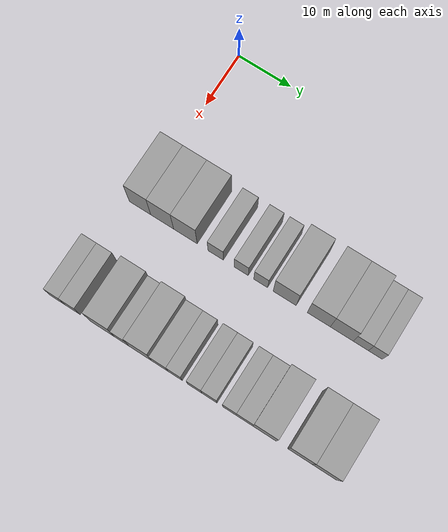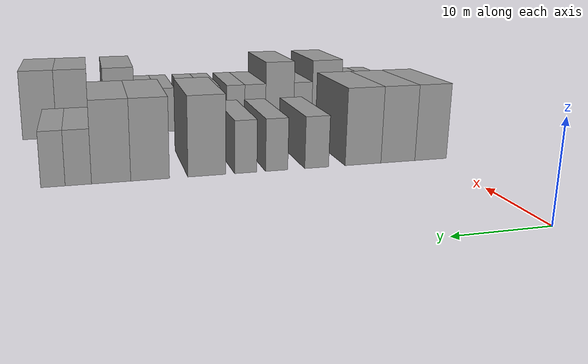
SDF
<sdf version="1.6">
 <world name="default">
  <model name="building_52">
   <static>1</static>
   <pose>25.0000 0.6370 0 0.000000 0.000000 0.000000</pose>
   <link name="link">
    <pose>0 0 4.50 0 0 0</pose>
    <collision name="collision"><geometry><box><size>10.0000 4.0496 9.0000</size></box></geometry></collision>
    <visual name="visual">
     <cast_shadows>0</cast_shadows>
     <geometry><box><size>10.0000 4.0496 9.0000</size></box></geometry>
     <material>
      <script>
       <uri>model://grey_wall/materials/scripts</uri>
       <uri>model://grey_wall/materials/textures</uri>
       <name>vrc/grey_wall</name>
      </script>
     </material>
    </visual>
   </link>
  </model>
  <model name="building_53">
   <static>1</static>
   <pose>25.0000 4.7994 0 0.000000 0.000000 0.000000</pose>
   <link name="link">
    <pose>0 0 4.50 0 0 0</pose>
    <collision name="collision"><geometry><box><size>10.0000 4.2754 9.0000</size></box></geometry></collision>
    <visual name="visual">
     <cast_shadows>0</cast_shadows>
     <geometry><box><size>10.0000 4.2754 9.0000</size></box></geometry>
     <material>
      <script>
       <uri>model://grey_wall/materials/scripts</uri>
       <uri>model://grey_wall/materials/textures</uri>
       <name>vrc/grey_wall</name>
      </script>
     </material>
    </visual>
   </link>
  </model>
  <model name="building_54">
   <static>1</static>
   <pose>25.0000 9.1349 0 0.000000 0.000000 0.000000</pose>
   <link name="link">
    <pose>0 0 4.50 0 0 0</pose>
    <collision name="collision"><geometry><box><size>10.0000 4.3956 9.0000</size></box></geometry></collision>
    <visual name="visual">
     <cast_shadows>0</cast_shadows>
     <geometry><box><size>10.0000 4.3956 9.0000</size></box></geometry>
     <material>
      <script>
       <uri>model://grey_wall/materials/scripts</uri>
       <uri>model://grey_wall/materials/textures</uri>
       <name>vrc/grey_wall</name>
      </script>
     </material>
    </visual>
   </link>
  </model>
  <model name="building_55">
   <static>1</static>
   <pose>25.0000 14.7511 0 0.000000 0.000000 0.000000</pose>
   <link name="link">
    <pose>0 0 3.00 0 0 0</pose>
    <collision name="collision"><geometry><box><size>10.0000 2.8367 6.0000</size></box></geometry></collision>
    <visual name="visual">
     <cast_shadows>0</cast_shadows>
     <geometry><box><size>10.0000 2.8367 6.0000</size></box></geometry>
     <material>
      <script>
       <uri>model://grey_wall/materials/scripts</uri>
       <uri>model://grey_wall/materials/textures</uri>
       <name>vrc/grey_wall</name>
      </script>
     </material>
    </visual>
   </link>
  </model>
  <model name="building_56">
   <static>1</static>
   <pose>25.0000 19.4567 0 0.000000 0.000000 0.000000</pose>
   <link name="link">
    <pose>0 0 3.00 0 0 0</pose>
    <collision name="collision"><geometry><box><size>10.0000 2.5744 6.0000</size></box></geometry></collision>
    <visual name="visual">
     <cast_shadows>0</cast_shadows>
     <geometry><box><size>10.0000 2.5744 6.0000</size></box></geometry>
     <material>
      <script>
       <uri>model://grey_wall/materials/scripts</uri>
       <uri>model://grey_wall/materials/textures</uri>
       <name>vrc/grey_wall</name>
      </script>
     </material>
    </visual>
   </link>
  </model>
  <model name="building_57">
   <static>1</static>
   <pose>25.0000 23.0053 0 0.000000 0.000000 0.000000</pose>
   <link name="link">
    <pose>0 0 3.00 0 0 0</pose>
    <collision name="collision"><geometry><box><size>10.0000 2.5229 6.0000</size></box></geometry></collision>
    <visual name="visual">
     <cast_shadows>0</cast_shadows>
     <geometry><box><size>10.0000 2.5229 6.0000</size></box></geometry>
     <material>
      <script>
       <uri>model://grey_wall/materials/scripts</uri>
       <uri>model://grey_wall/materials/textures</uri>
       <name>vrc/grey_wall</name>
      </script>
     </material>
    </visual>
   </link>
  </model>
  <model name="building_58">
   <static>1</static>
   <pose>25.0000 27.3619 0 0.000000 0.000000 0.000000</pose>
   <link name="link">
    <pose>0 0 4.50 0 0 0</pose>
    <collision name="collision"><geometry><box><size>10.0000 4.1903 9.0000</size></box></geometry></collision>
    <visual name="visual">
     <cast_shadows>0</cast_shadows>
     <geometry><box><size>10.0000 4.1903 9.0000</size></box></geometry>
     <material>
      <script>
       <uri>model://grey_wall/materials/scripts</uri>
       <uri>model://grey_wall/materials/textures</uri>
       <name>vrc/grey_wall</name>
      </script>
     </material>
    </visual>
   </link>
  </model>
  <model name="building_59">
   <static>1</static>
   <pose>25.0000 33.5220 0 0.000000 0.000000 0.000000</pose>
   <link name="link">
    <pose>0 0 4.50 0 0 0</pose>
    <collision name="collision"><geometry><box><size>10.0000 4.1299 9.0000</size></box></geometry></collision>
    <visual name="visual">
     <cast_shadows>0</cast_shadows>
     <geometry><box><size>10.0000 4.1299 9.0000</size></box></geometry>
     <material>
      <script>
       <uri>model://grey_wall/materials/scripts</uri>
       <uri>model://grey_wall/materials/textures</uri>
       <name>vrc/grey_wall</name>
      </script>
     </material>
    </visual>
   </link>
  </model>
  <model name="building_60">
   <static>1</static>
   <pose>25.0000 37.6324 0 0.000000 0.000000 0.000000</pose>
   <link name="link">
    <pose>0 0 4.50 0 0 0</pose>
    <collision name="collision"><geometry><box><size>10.0000 4.0908 9.0000</size></box></geometry></collision>
    <visual name="visual">
     <cast_shadows>0</cast_shadows>
     <geometry><box><size>10.0000 4.0908 9.0000</size></box></geometry>
     <material>
      <script>
       <uri>model://grey_wall/materials/scripts</uri>
       <uri>model://grey_wall/materials/textures</uri>
       <name>vrc/grey_wall</name>
      </script>
     </material>
    </visual>
   </link>
  </model>
  <model name="building_61">
   <static>1</static>
   <pose>25.0000 41.0236 0 0.000000 0.000000 0.000000</pose>
   <link name="link">
    <pose>0 0 3.00 0 0 0</pose>
    <collision name="collision"><geometry><box><size>10.0000 2.6917 6.0000</size></box></geometry></collision>
    <visual name="visual">
     <cast_shadows>0</cast_shadows>
     <geometry><box><size>10.0000 2.6917 6.0000</size></box></geometry>
     <material>
      <script>
       <uri>model://grey_wall/materials/scripts</uri>
       <uri>model://grey_wall/materials/textures</uri>
       <name>vrc/grey_wall</name>
      </script>
     </material>
    </visual>
   </link>
  </model>
  <model name="building_62">
   <static>1</static>
   <pose>25.0000 43.5973 0 0.000000 0.000000 0.000000</pose>
   <link name="link">
    <pose>0 0 3.00 0 0 0</pose>
    <collision name="collision"><geometry><box><size>10.0000 2.4557 6.0000</size></box></geometry></collision>
    <visual name="visual">
     <cast_shadows>0</cast_shadows>
     <geometry><box><size>10.0000 2.4557 6.0000</size></box></geometry>
     <material>
      <script>
       <uri>model://grey_wall/materials/scripts</uri>
       <uri>model://grey_wall/materials/textures</uri>
       <name>vrc/grey_wall</name>
      </script>
     </material>
    </visual>
   </link>
  </model>
  <model name="building_155">
   <static>1</static>
   <pose>44.0000 -1.9106 0 0.000000 0.000000 0.000000</pose>
   <link name="link">
    <pose>0 0 3.00 0 0 0</pose>
    <collision name="collision"><geometry><box><size>10.0000 2.7138 6.0000</size></box></geometry></collision>
    <visual name="visual">
     <cast_shadows>0</cast_shadows>
     <geometry><box><size>10.0000 2.7138 6.0000</size></box></geometry>
     <material>
      <script>
       <uri>model://grey_wall/materials/scripts</uri>
       <uri>model://grey_wall/materials/textures</uri>
       <name>vrc/grey_wall</name>
      </script>
     </material>
    </visual>
   </link>
  </model>
  <model name="building_156">
   <static>1</static>
   <pose>44.0000 0.8481 0 0.000000 0.000000 0.000000</pose>
   <link name="link">
    <pose>0 0 3.00 0 0 0</pose>
    <collision name="collision"><geometry><box><size>10.0000 2.8035 6.0000</size></box></geometry></collision>
    <visual name="visual">
     <cast_shadows>0</cast_shadows>
     <geometry><box><size>10.0000 2.8035 6.0000</size></box></geometry>
     <material>
      <script>
       <uri>model://grey_wall/materials/scripts</uri>
       <uri>model://grey_wall/materials/textures</uri>
       <name>vrc/grey_wall</name>
      </script>
     </material>
    </visual>
   </link>
  </model>
  <model name="building_157">
   <static>1</static>
   <pose>44.0000 6.4411 0 0.000000 0.000000 0.000000</pose>
   <link name="link">
    <pose>0 0 4.50 0 0 0</pose>
    <collision name="collision"><geometry><box><size>10.0000 4.3825 9.0000</size></box></geometry></collision>
    <visual name="visual">
     <cast_shadows>0</cast_shadows>
     <geometry><box><size>10.0000 4.3825 9.0000</size></box></geometry>
     <material>
      <script>
       <uri>model://grey_wall/materials/scripts</uri>
       <uri>model://grey_wall/materials/textures</uri>
       <name>vrc/grey_wall</name>
      </script>
     </material>
    </visual>
   </link>
  </model>
  <model name="building_158">
   <static>1</static>
   <pose>44.0000 9.9770 0 0.000000 0.000000 0.000000</pose>
   <link name="link">
    <pose>0 0 3.00 0 0 0</pose>
    <collision name="collision"><geometry><box><size>10.0000 2.6894 6.0000</size></box></geometry></collision>
    <visual name="visual">
     <cast_shadows>0</cast_shadows>
     <geometry><box><size>10.0000 2.6894 6.0000</size></box></geometry>
     <material>
      <script>
       <uri>model://grey_wall/materials/scripts</uri>
       <uri>model://grey_wall/materials/textures</uri>
       <name>vrc/grey_wall</name>
      </script>
     </material>
    </visual>
   </link>
  </model>
  <model name="building_159">
   <static>1</static>
   <pose>44.0000 13.3762 0 0.000000 0.000000 0.000000</pose>
   <link name="link">
    <pose>0 0 4.50 0 0 0</pose>
    <collision name="collision"><geometry><box><size>10.0000 4.1091 9.0000</size></box></geometry></collision>
    <visual name="visual">
     <cast_shadows>0</cast_shadows>
     <geometry><box><size>10.0000 4.1091 9.0000</size></box></geometry>
     <material>
      <script>
       <uri>model://grey_wall/materials/scripts</uri>
       <uri>model://grey_wall/materials/textures</uri>
       <name>vrc/grey_wall</name>
      </script>
     </material>
    </visual>
   </link>
  </model>
  <model name="building_160">
   <static>1</static>
   <pose>44.0000 16.9262 0 0.000000 0.000000 0.000000</pose>
   <link name="link">
    <pose>0 0 3.00 0 0 0</pose>
    <collision name="collision"><geometry><box><size>10.0000 2.9908 6.0000</size></box></geometry></collision>
    <visual name="visual">
     <cast_shadows>0</cast_shadows>
     <geometry><box><size>10.0000 2.9908 6.0000</size></box></geometry>
     <material>
      <script>
       <uri>model://grey_wall/materials/scripts</uri>
       <uri>model://grey_wall/materials/textures</uri>
       <name>vrc/grey_wall</name>
      </script>
     </material>
    </visual>
   </link>
  </model>
  <model name="building_161">
   <static>1</static>
   <pose>44.0000 19.6893 0 0.000000 0.000000 0.000000</pose>
   <link name="link">
    <pose>0 0 3.00 0 0 0</pose>
    <collision name="collision"><geometry><box><size>10.0000 2.5356 6.0000</size></box></geometry></collision>
    <visual name="visual">
     <cast_shadows>0</cast_shadows>
     <geometry><box><size>10.0000 2.5356 6.0000</size></box></geometry>
     <material>
      <script>
       <uri>model://grey_wall/materials/scripts</uri>
       <uri>model://grey_wall/materials/textures</uri>
       <name>vrc/grey_wall</name>
      </script>
     </material>
    </visual>
   </link>
  </model>
  <model name="building_162">
   <static>1</static>
   <pose>44.0000 23.2191 0 0.000000 0.000000 0.000000</pose>
   <link name="link">
    <pose>0 0 3.00 0 0 0</pose>
    <collision name="collision"><geometry><box><size>10.0000 2.5240 6.0000</size></box></geometry></collision>
    <visual name="visual">
     <cast_shadows>0</cast_shadows>
     <geometry><box><size>10.0000 2.5240 6.0000</size></box></geometry>
     <material>
      <script>
       <uri>model://grey_wall/materials/scripts</uri>
       <uri>model://grey_wall/materials/textures</uri>
       <name>vrc/grey_wall</name>
      </script>
     </material>
    </visual>
   </link>
  </model>
  <model name="building_163">
   <static>1</static>
   <pose>44.0000 25.8400 0 0.000000 0.000000 0.000000</pose>
   <link name="link">
    <pose>0 0 3.00 0 0 0</pose>
    <collision name="collision"><geometry><box><size>10.0000 2.7177 6.0000</size></box></geometry></collision>
    <visual name="visual">
     <cast_shadows>0</cast_shadows>
     <geometry><box><size>10.0000 2.7177 6.0000</size></box></geometry>
     <material>
      <script>
       <uri>model://grey_wall/materials/scripts</uri>
       <uri>model://grey_wall/materials/textures</uri>
       <name>vrc/grey_wall</name>
      </script>
     </material>
    </visual>
   </link>
  </model>
  <model name="building_164">
   <static>1</static>
   <pose>44.0000 29.4179 0 0.000000 0.000000 0.000000</pose>
   <link name="link">
    <pose>0 0 3.00 0 0 0</pose>
    <collision name="collision"><geometry><box><size>10.0000 2.4383 6.0000</size></box></geometry></collision>
    <visual name="visual">
     <cast_shadows>0</cast_shadows>
     <geometry><box><size>10.0000 2.4383 6.0000</size></box></geometry>
     <material>
      <script>
       <uri>model://grey_wall/materials/scripts</uri>
       <uri>model://grey_wall/materials/textures</uri>
       <name>vrc/grey_wall</name>
      </script>
     </material>
    </visual>
   </link>
  </model>
  <model name="building_165">
   <static>1</static>
   <pose>44.0000 32.1134 0 0.000000 0.000000 0.000000</pose>
   <link name="link">
    <pose>0 0 3.00 0 0 0</pose>
    <collision name="collision"><geometry><box><size>10.0000 2.9527 6.0000</size></box></geometry></collision>
    <visual name="visual">
     <cast_shadows>0</cast_shadows>
     <geometry><box><size>10.0000 2.9527 6.0000</size></box></geometry>
     <material>
      <script>
       <uri>model://grey_wall/materials/scripts</uri>
       <uri>model://grey_wall/materials/textures</uri>
       <name>vrc/grey_wall</name>
      </script>
     </material>
    </visual>
   </link>
  </model>
  <model name="building_166">
   <static>1</static>
   <pose>44.0000 35.6193 0 0.000000 0.000000 0.000000</pose>
   <link name="link">
    <pose>0 0 4.50 0 0 0</pose>
    <collision name="collision"><geometry><box><size>10.0000 4.0591 9.0000</size></box></geometry></collision>
    <visual name="visual">
     <cast_shadows>0</cast_shadows>
     <geometry><box><size>10.0000 4.0591 9.0000</size></box></geometry>
     <material>
      <script>
       <uri>model://grey_wall/materials/scripts</uri>
       <uri>model://grey_wall/materials/textures</uri>
       <name>vrc/grey_wall</name>
      </script>
     </material>
    </visual>
   </link>
  </model>
  <model name="building_167">
   <static>1</static>
   <pose>44.0000 41.7368 0 0.000000 0.000000 0.000000</pose>
   <link name="link">
    <pose>0 0 4.50 0 0 0</pose>
    <collision name="collision"><geometry><box><size>10.0000 4.1760 9.0000</size></box></geometry></collision>
    <visual name="visual">
     <cast_shadows>0</cast_shadows>
     <geometry><box><size>10.0000 4.1760 9.0000</size></box></geometry>
     <material>
      <script>
       <uri>model://grey_wall/materials/scripts</uri>
       <uri>model://grey_wall/materials/textures</uri>
       <name>vrc/grey_wall</name>
      </script>
     </material>
    </visual>
   </link>
  </model>
  <model name="building_168">
   <static>1</static>
   <pose>44.0000 45.9676 0 0.000000 0.000000 0.000000</pose>
   <link name="link">
    <pose>0 0 4.50 0 0 0</pose>
    <collision name="collision"><geometry><box><size>10.0000 4.2856 9.0000</size></box></geometry></collision>
    <visual name="visual">
     <cast_shadows>0</cast_shadows>
     <geometry><box><size>10.0000 4.2856 9.0000</size></box></geometry>
     <material>
      <script>
       <uri>model://grey_wall/materials/scripts</uri>
       <uri>model://grey_wall/materials/textures</uri>
       <name>vrc/grey_wall</name>
      </script>
     </material>
    </visual>
   </link>
  </model>
 </world>
</sdf>
